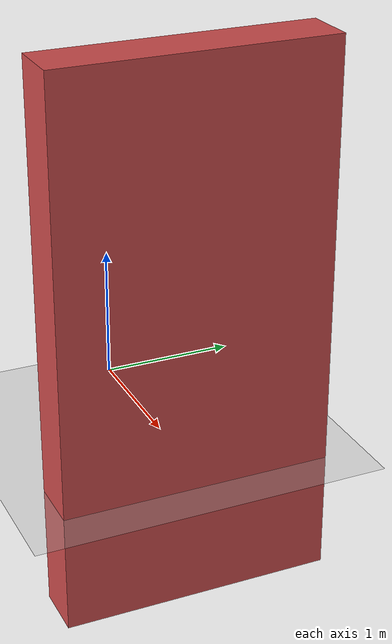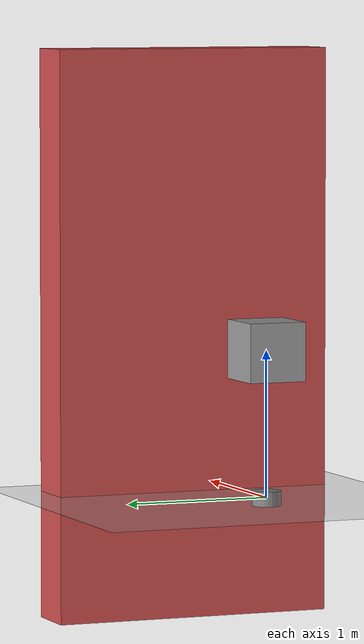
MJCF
<mujoco>
  <option gravity="0 0 -9.81"/>
  <worldbody>
    <body name="hinge" pos="0 0 0">
      <geom type="cylinder" size="0.1 0.05" rgba="0.5 0.5 0.5 1"/>
    </body>
    <body name="support" pos="0 0 1">
      <geom type="box" size="0.2 0.2 0.2" rgba="0.6 0.6 0.6 1"/>
    </body>
    <body name="surface" pos="-10 0 -0.1">
      <geom type="plane" size="30 30 0.1" rgba="0.7 0.7 0.7 1"/>
    </body>
    <body name="door" pos="1.5 0 1">
      <geom type="box" size="0.2 1 2" density="1" rgba="0.8 0.3 0.3 1"/>
      <joint name="door_joint" type="hinge" pos="-0.5 0 0" axis="0 0 1"/>
    </body>
  </worldbody>
</mujoco>
